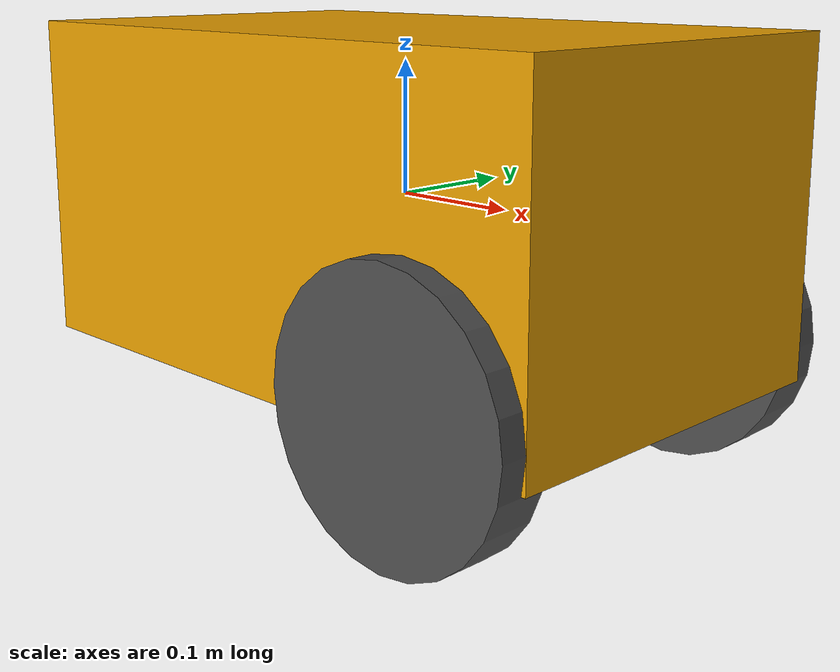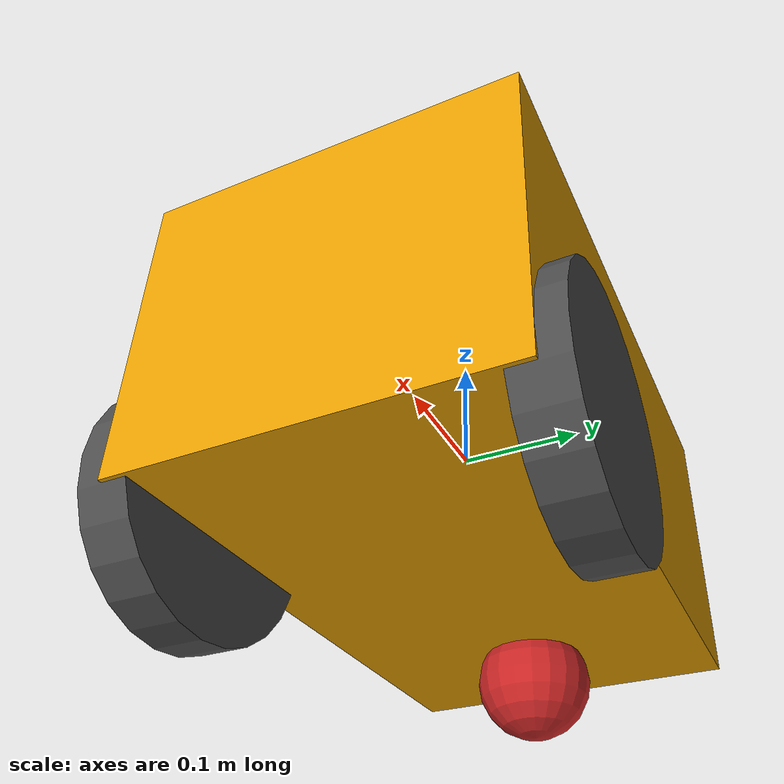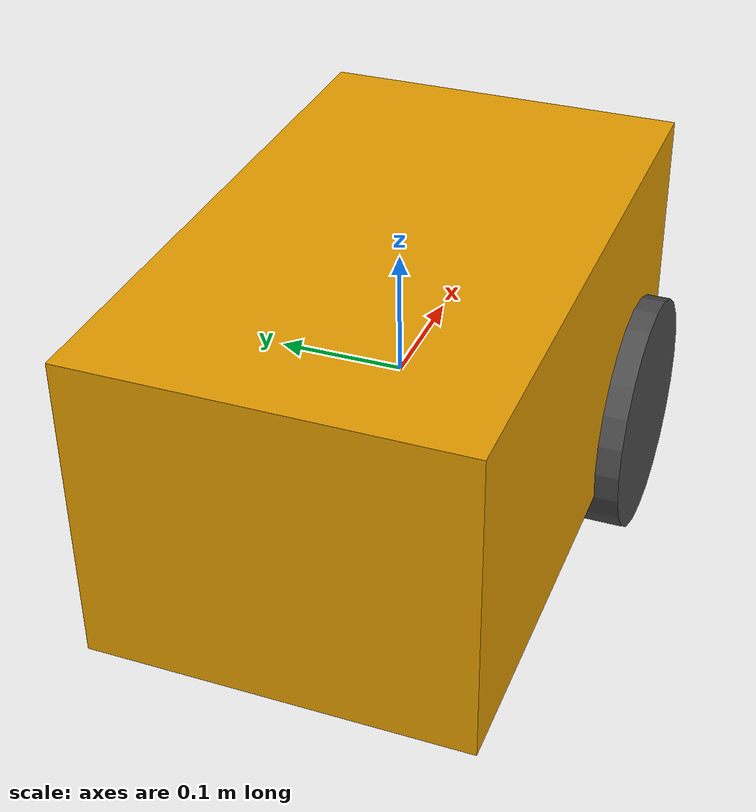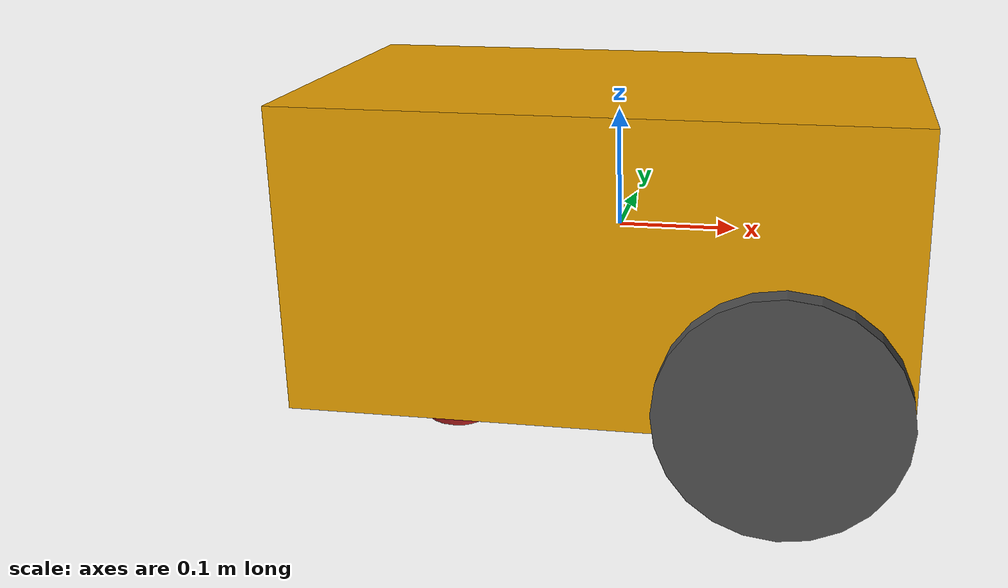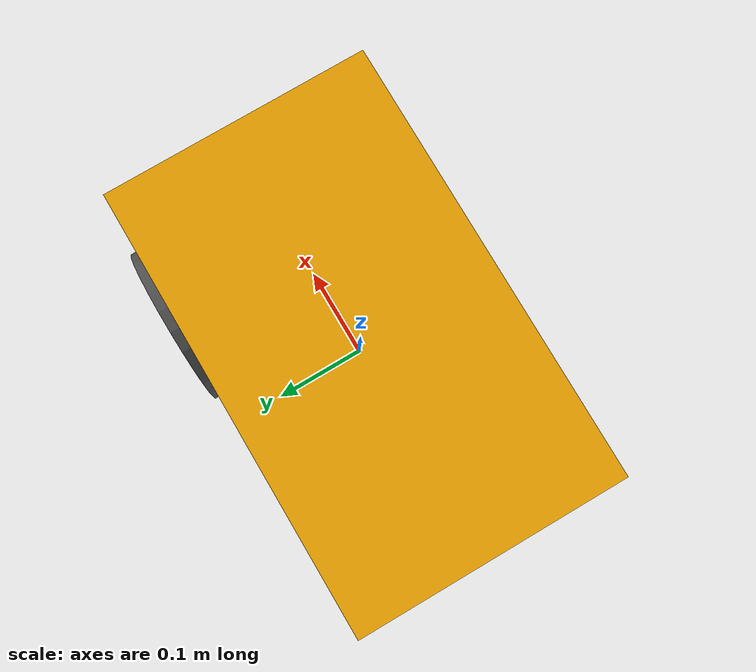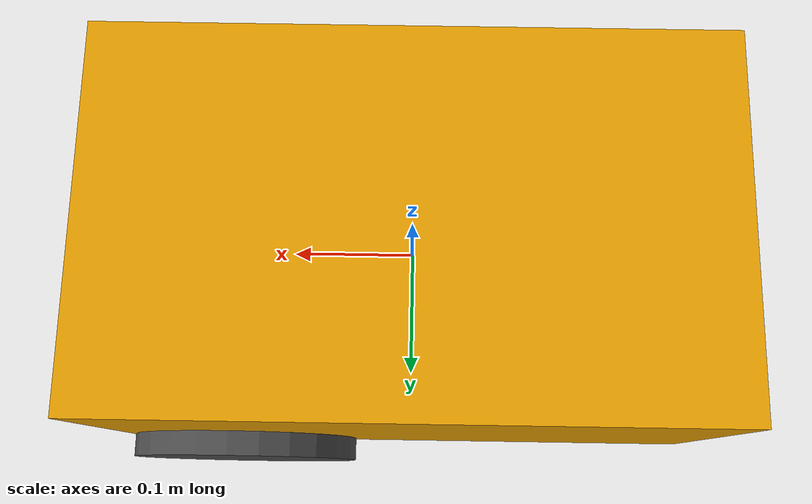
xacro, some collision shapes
<?xml version="1.0"?>

<!-- Fabrizia Auletta -->
<!-- fabrizia.auletta@bristol.ac.uk -->
<!-- June 2020 -->

<robot name="agent_diff_drive" xmlns:xacro="http://ros.org/wiki/xacro">
  <xacro:include filename="$(find agent_description)/urdf/herd_robot_macro.xacro" />

	<!--Actual body/chassis of the robot-->
	<link name="herder_1_base_link">
		<inertial>
			<mass value="${base_mass}" />
			<origin xyz="0 0 0" />
			<box_inertia  m="${base_mass}" x="${base_length}" y="${base_width}" z="${base_height}"/>
		</inertial>
		<visual>
			<origin xyz="0 0 0" rpy="0 0 0" />
			<geometry>
				<mesh filename="package://herd_description/meshes/chassis.dae"/>
			</geometry>
		</visual>
		<collision>
			<origin xyz="0 0 0" rpy="0 0 0" />
			<geometry>
	<box size="${base_length} ${base_width} ${base_height}"/>
			</geometry>
		</collision>
	</link>

	<xacro:caster_joint
		name="caster_front_link"
		parent="herder_1_base_link"
		child="caster_front_link">
		<origin xyz="-0.15 0.0 -0.15" rpy="${-M_PI/2} 0 0"/>
	</xacro:caster_joint>

	<xacro:caster_link
		name="caster_front_link">
			<origin xyz="0 0 0" rpy="${M_PI/2} 0 0" />
	</xacro:caster_link>

	<wheel fb="front" lr="right" parent="herder_1_base_link" translateX="1" translateY="1" flipY="1"/>
	<wheel fb="front" lr="left" parent="herder_1_base_link" translateX="1" translateY="-1" flipY="1"/>

	  <gazebo reference="front_right_wheel">
        <material>Gazebo/FlatBlack</material>
         </gazebo>

         <gazebo reference="front_left_wheel">
        <material>Gazebo/FlatBlack</material>
         </gazebo>

  <!-- Differential drive controller  -->
  <gazebo>
    <plugin name="differential_drive_controller" filename="libgazebo_ros_diff_drive.so">
      <legacyMode>true</legacyMode>
      <rosDebugLevel>Debug</rosDebugLevel>
      <publishWheelTF>false</publishWheelTF>
      <robotNamespace>/</robotNamespace>
      <publishTf>1</publishTf>
      <publishWheelJointState>false</publishWheelJointState>
      <alwaysOn>true</alwaysOn>
      <updateRate>100.0</updateRate>
      <leftJoint>front_left_wheel_joint</leftJoint>
      <rightJoint>front_right_wheel_joint</rightJoint>
      <wheelSeparation>${2*base_width}</wheelSeparation>
      <wheelDiameter>${2*wheel_radius}</wheelDiameter>
      <broadcastTF>1</broadcastTF>
      <wheelTorque>30</wheelTorque>
      <wheelAcceleration>1.8</wheelAcceleration>
      <commandTopic>cmd_vel_1</commandTopic>
      <odometryFrame>odom</odometryFrame>
      <odometryTopic>odom</odometryTopic>
      <robotBaseFrame>herder_1_base_link</robotBaseFrame>
    </plugin>
  </gazebo>

</robot>

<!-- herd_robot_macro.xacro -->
<!-- Fabrizia Auletta -->
<!-- fabrizia.auletta@bristol.ac.uk -->
<!-- June 2020 -->

<robot name="agent_diff_drive" xmlns:xacro="http://www.ros.org/wiki/xacro">

  <!--All units in m-kg-s-radians unit system -->
  <xacro:property name="M_PI" value="3.1415926535897931" />
  <xacro:property name="M_PI_2" value="1.570796327" />
  <xacro:property name="DEG_TO_RAD" value="0.017453293" />

	<!--Material Definition-->
	<material name="Black">
	  <color rgba="0.0 0.0 0.0 1.0"/>
	</material>

  <material name="Red">
  	<color rgba="0.8 0.0 0.0 1.0"/>
  </material>

  <material name="White">
    <color rgba="1.0 1.0 1.0 1.0"/>
  </material>

  <material name="Blue">
    <color rgba="0.0 0.0 0.8 1.0"/>
  </material>

  <!-- Base properties -->0.445 0.277 0.17

  <xacro:property name="base_length" value="0.5" />
  <xacro:property name="base_width" value="0.3" />
  <xacro:property name="base_height" value="0.25" />
  <xacro:property name="base_mass" value="5" />

  <!-- caster wheel proprieties  -->
  <xacro:property name="caster_height" value="0.05" />
  <xacro:property name="caster_radius" value="0.05" />
  <xacro:property name="caster_mass" value="1" /> <!-- in kg-->

  <!-- Wheels -->
  <xacro:property name="wheel_radius" value="0.1" />
  <xacro:property name="wheel_height" value="0.04" />
  <xacro:property name="wheel_mass" value="2.5" /> <!-- in kg-->

  <xacro:property name="base_x_origin_to_wheel_origin" value="0.15" />
  <xacro:property name="base_y_origin_to_wheel_origin" value="0.15" />
  <xacro:property name="base_z_origin_to_wheel_origin" value="-0.1" />

  <xacro:macro name="box_inertia" params="m x y z">
    <inertia  ixx="${m*(y*y+z*z)/12}" ixy = "0" ixz = "0"
              iyy="${m*(x*x+z*z)/12}" iyz = "0"
              izz="${m*(x*x+y*y)/12}" />
  </xacro:macro>

  <xacro:macro name="cylinder_inertia" params="m r h">
    <inertia  ixx="${m*(3*r*r+h*h)/12}" ixy = "0" ixz = "0"
              iyy="${m*(3*r*r+h*h)/12}" iyz = "0"
              izz="${m*r*r/2}" />
  </xacro:macro>

	<xacro:macro name="caster_joint" params="name parent child *origin">
		<joint name="${name}" type="continuous" >
			<parent link="${parent}" />
			<child link="${child}" />
	    <xacro:insert_block name="origin" />
	    <limit effort="100" velocity="100"/>
             <joint_properties damping="0.0" friction="0.0"/>
		</joint>

	</xacro:macro>

	<xacro:macro name="caster_link" params="name *origin">
		<link name="${name}">
			<visual>
	    	<xacro:insert_block name="origin" />
				<geometry>
					<sphere radius="${caster_radius}" />
				</geometry>

			</visual>
			<collision>
				<geometry>
					<sphere radius="${caster_radius}" /><!--${M_PI/2}- -->
				</geometry>
				<origin xyz="0 0 0" rpy="0 0 0" />
			</collision>
			<inertial>
				<mass value="${caster_mass}" />
				<origin xyz="0 0 0" />
					<inertia  ixx="0.001" ixy="0.0" ixz="0.0"
						  			iyy="0.001" iyz="0.0"
 										izz="0.001" />
			</inertial>
		</link>

		<gazebo reference="${name}">
		        <material>Gazebo/Red</material>
	       </gazebo>

	</xacro:macro>

	<!--fb : front, back ; lr: left, right -->
  <xacro:macro name="wheel" params="fb lr parent translateX translateY flipY">
	  <link name="${fb}_${lr}_wheel">
      <visual>
        <origin xyz="0 0 0" rpy="${flipY*M_PI/2} 0  0 " />
        <geometry>
          <cylinder length="${wheel_height}" radius="${wheel_radius}" />
        </geometry>
        <material name="DarkGray" />
      </visual>
      <collision>
        <origin xyz="0 0 0" rpy="${flipY*M_PI/2} 0 0 " />
        <geometry>
          <cylinder length="${wheel_height}" radius="${wheel_radius}" />
        </geometry>
      </collision>
      <inertial>
        <mass value="${wheel_mass}" />
        <origin xyz="0 0 0" />
        <cylinder_inertia  m="${wheel_mass}" r="${wheel_radius}" h="${wheel_height}" />
      </inertial>
    </link>

    <joint name="${fb}_${lr}_wheel_joint" type="continuous">
      <parent link="${parent}"/>
      <child link="${fb}_${lr}_wheel"/>
      <origin xyz="${translateX * base_x_origin_to_wheel_origin} ${translateY * base_y_origin_to_wheel_origin} ${base_z_origin_to_wheel_origin}" rpy="0 0 0" />
      <axis xyz="0 1 0" rpy="0  0" />
      <limit effort="100" velocity="100"/>
      <joint_properties damping="0.0" friction="0.0"/>
    </joint>

    <!-- Transmission is important to link the joints and the controller -->
    <transmission name="${fb}_${lr}_wheel_joint_trans">
      <type>transmission_interface/SimpleTransmission</type>
      <joint name="${fb}_${lr}_wheel_joint" />
      <actuator name="${fb}_${lr}_wheel_joint_motor">
        <hardwareInterface>EffortJointInterface</hardwareInterface>
        <mechanicalReduction>1</mechanicalReduction>
      </actuator>
    </transmission>

  </xacro:macro>

</robot>
